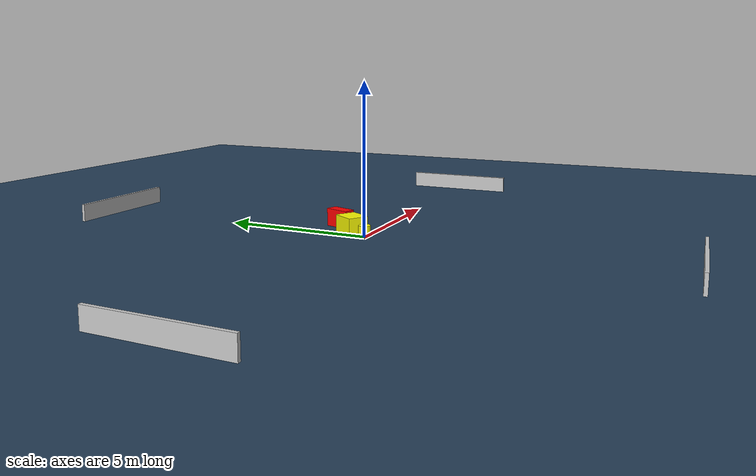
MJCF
<?xml version="1.0" ?>
<mujoco model="generated_environment">
  <option timestep="0.01" integrator="RK4" cone="elliptic"/>
  <default>
    <geom density="1"/>
  </default>
  <asset>
    <texture builtin="gradient" height="3072" name="skybox" rgb1="0.3 0.5 0.7" rgb2="0 0 0" type="skybox" width="512"/>
    <texture builtin="checker" height="300" name="groundplane" rgb1="0.2 0.3 0.4" rgb2="0.1 0.2 0.3" type="2d" width="300"/>
    <material name="groundplane" reflectance="0.2" texrepeat="5 5" texture="groundplane"/>
  </asset>
  <worldbody>
    <light dir="0 0 -1" directional="true" pos="0 0 1.5"/>
    <geom condim="3" friction="0.5 0.005 0.001" material="groundplane" name="floor" pos="0 0 0" size="0 0 0.05" type="plane"/>
    <body name="walls">
      <geom name="wall_1" condim="4" pos="-10.0 0.0 0.3" rgba="0.800000011920929 0.800000011920929 0.800000011920929 1.0" size="0.05 2.0 0.3" type="box"/>
      <geom name="wall_2" condim="4" pos="10.0 0.0 0.3" rgba="0.800000011920929 0.800000011920929 0.800000011920929 1.0" size="0.05 2.0 0.3" type="box"/>
      <geom name="wall_3" condim="4" pos="0.0 -10.0 0.3" rgba="0.800000011920929 0.800000011920929 0.800000011920929 1.0" size="2.0 0.05 0.3" type="box"/>
      <geom name="wall_4" condim="4" pos="0.0 10.0 0.3" rgba="0.800000011920929 0.800000011920929 0.800000011920929 1.0" size="2.0 0.05 0.3" type="box"/>
    </body>
    <body name="robot">
      <joint name="joint_x" type="slide" pos="0 0 0" axis="1 0 0"/>
      <joint name="joint_y" type="slide" pos="0 0 0" axis="0 1 0"/>
      <geom name="robot" type="cylinder" pos="0.0 0.0 0.2" size="0.2 0.2 0.0" mass="5.0" friction="1.0 0.005 0.0001" condim="4" rgba="1.0 1.0 0.0 1.0"/>
    </body>
    <body name="obstacle_1_movable">
      <geom name="obstacle_1_movable" condim="4" pos="0.3431816486063294 0.6154578751717763 0.3" euler="0 0 328.25043018344434" friction="0.0 0.005 0.001" rgba="1.0 1.0 0.0 1.0" size="0.35795395873577934 0.41537480681606176 0.3" type="box" mass="0.1"/>
      <joint type="free"/>
    </body>
    <body name="obstacle_2_static">
      <geom name="obstacle_2_static" condim="4" pos="1.1238837462916502 1.4200873988585032 0.3" euler="0 0 341.87813133649433" friction="0.0 0.005 0.001" rgba="1.0 0.0 0.0 1.0" size="0.20273744178233227 0.43573917479893237 0.3" type="box"/>
    </body>
  </worldbody>
  <actuator>
    <motor name="actuator_x" joint="joint_x" gear="1" ctrlrange="-1 1"/>
    <motor name="actuator_y" joint="joint_y" gear="1" ctrlrange="-1 1"/>
  </actuator>
</mujoco>
